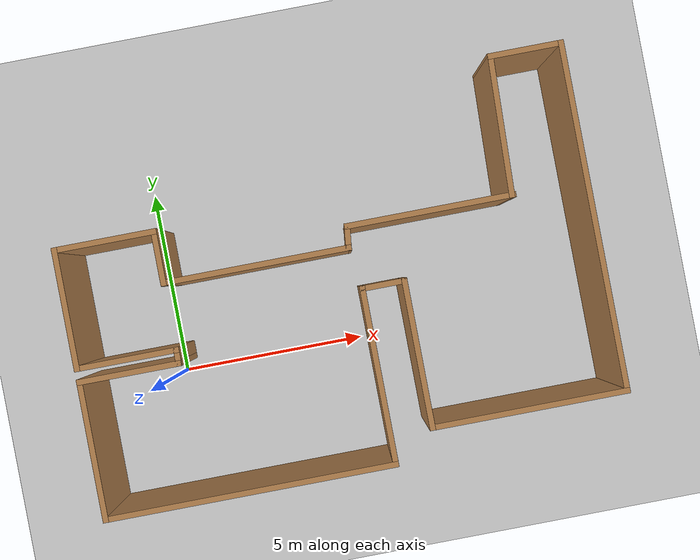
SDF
<sdf version="1.7">
 <world name="default">
  <light name="sun" type="directional">
   <pose>0 0 10 0 -0 0</pose>
   <diffuse>0.8 0.8 0.8 1</diffuse>
   <specular>0.2 0.2 0.2 1</specular>
   <attenuation>
    <range>1000</range>
    <constant>0.9</constant>
    <linear>0.01</linear>
    <quadratic>0.001</quadratic>
   </attenuation>
   <direction>-0.5 0.1 -0.9</direction>
   <spot><inner_angle>0</inner_angle><outer_angle>0</outer_angle><falloff>0</falloff></spot>
  </light>
  <model name="ground_plane">
   <static>1</static>
   <link name="link">
    <collision name="collision">
     <geometry><plane><normal>0 0 1</normal><size>100 100</size></plane></geometry>
     <surface>
      <contact><collide_bitmask>65535</collide_bitmask></contact>
      <friction><ode><mu>100</mu><mu2>50</mu2></ode></friction>
     </surface>
    </collision>
    <visual name="visual">
     <cast_shadows>0</cast_shadows>
     <geometry><plane><normal>0 0 1</normal><size>100 100</size></plane></geometry>
     <material>
      <script><uri>file://media/materials/scripts/gazebo.material</uri><name>Gazebo/Grey</name></script>
     </material>
    </visual>
   </link>
  </model>
  <gravity>0 0 -9.8</gravity>
  <magnetic_field>6e-06 2.3e-05 -4.2e-05</magnetic_field>
  <atmosphere type="adiabatic"/>
  <physics type="ode">
   <max_step_size>0.001</max_step_size>
   <real_time_factor>1</real_time_factor>
   <real_time_update_rate>1000</real_time_update_rate>
  </physics>
  <scene><ambient>0.4 0.4 0.4 1</ambient><background>0.7 0.7 0.7 1</background><shadows>1</shadows></scene>
  <spherical_coordinates>
   <surface_model>EARTH_WGS84</surface_model>
   <latitude_deg>0</latitude_deg>
   <longitude_deg>0</longitude_deg>
   <elevation>0</elevation>
   <heading_deg>0</heading_deg>
  </spherical_coordinates>
  <model name="myroom">
   <pose>4.54829 1.68906 0 0 -0 0</pose>
   <link name="Wall_10">
    <collision name="Wall_10_Collision">
     <geometry><box><size>3.25 0.15 2.5</size></box></geometry>
     <pose>0 0 1.25 0 -0 0</pose>
    </collision>
    <visual name="Wall_10_Visual">
     <pose>0 0 1.25 0 -0 0</pose>
     <geometry><box><size>3.25 0.15 2.5</size></box></geometry>
     <material>
      <script><uri>file://media/materials/scripts/gazebo.material</uri><name>Gazebo/Wood</name></script>
      <ambient>1 1 1 1</ambient>
     </material>
     <meta><layer>0</layer></meta>
    </visual>
    <pose>-6.9 0.573885 0 0 -0 -1.5708</pose>
   </link>
   <link name="Wall_11">
    <collision name="Wall_11_Collision">
     <geometry><box><size>2.75 0.15 2.5</size></box></geometry>
     <pose>0 0 1.25 0 -0 0</pose>
    </collision>
    <visual name="Wall_11_Visual">
     <pose>0 0 1.25 0 -0 0</pose>
     <geometry><box><size>2.75 0.15 2.5</size></box></geometry>
     <material>
      <script><uri>file://media/materials/scripts/gazebo.material</uri><name>Gazebo/Wood</name></script>
      <ambient>1 1 1 1</ambient>
     </material>
     <meta><layer>0</layer></meta>
    </visual>
    <pose>-5.6 -0.976115 0 0 -0 0</pose>
   </link>
   <link name="Wall_12">
    <collision name="Wall_12_Collision">
     <geometry><box><size>0.5 0.15 2.5</size></box></geometry>
     <pose>0 0 1.25 0 -0 0</pose>
    </collision>
    <visual name="Wall_12_Visual">
     <pose>0 0 1.25 0 -0 0</pose>
     <geometry><box><size>0.5 0.15 2.5</size></box></geometry>
     <material>
      <script><uri>file://media/materials/scripts/gazebo.material</uri><name>Gazebo/Wood</name></script>
      <ambient>1 1 1 1</ambient>
     </material>
     <meta><layer>0</layer></meta>
    </visual>
    <pose>-4.3 -1.15112 0 0 -0 -1.5708</pose>
   </link>
   <link name="Wall_14">
    <collision name="Wall_14_Collision">
     <geometry><box><size>2.75 0.15 2.5</size></box></geometry>
     <pose>0 0 1.25 0 -0 0</pose>
    </collision>
    <visual name="Wall_14_Visual">
     <pose>0 0 1.25 0 -0 0</pose>
     <geometry><box><size>2.75 0.15 2.5</size></box></geometry>
     <material>
      <script><uri>file://media/materials/scripts/gazebo.material</uri><name>Gazebo/Wood</name></script>
      <ambient>1 1 1 1</ambient>
     </material>
     <meta><layer>0</layer></meta>
    </visual>
    <pose>-5.6 -1.32611 0 0 -0 3.14159</pose>
   </link>
   <link name="Wall_15">
    <collision name="Wall_15_Collision">
     <geometry><box><size>3.75 0.15 2.5</size></box></geometry>
     <pose>0 0 1.25 0 -0 0</pose>
    </collision>
    <visual name="Wall_15_Visual">
     <pose>0 0 1.25 0 -0 0</pose>
     <geometry><box><size>3.75 0.15 2.5</size></box></geometry>
     <material>
      <script><uri>file://media/materials/scripts/gazebo.material</uri><name>Gazebo/Wood</name></script>
      <ambient>1 1 1 1</ambient>
     </material>
     <meta><layer>0</layer></meta>
    </visual>
    <pose>-6.9 -3.12611 0 0 -0 -1.5708</pose>
   </link>
   <link name="Wall_16">
    <collision name="Wall_16_Collision">
     <geometry><box><size>7.75 0.15 2.5</size></box></geometry>
     <pose>0 0 1.25 0 -0 0</pose>
    </collision>
    <visual name="Wall_16_Visual">
     <pose>0 0 1.25 0 -0 0</pose>
     <geometry><box><size>7.75 0.15 2.5</size></box></geometry>
     <material>
      <script><uri>file://media/materials/scripts/gazebo.material</uri><name>Gazebo/Wood</name></script>
      <ambient>1 1 1 1</ambient>
     </material>
     <meta><layer>0</layer></meta>
    </visual>
    <pose>-3.1 -4.92612 0 0 -0 0</pose>
   </link>
   <link name="Wall_17">
    <collision name="Wall_17_Collision">
     <geometry><box><size>4.75 0.15 2.5</size></box></geometry>
     <pose>0 0 1.25 0 -0 0</pose>
    </collision>
    <visual name="Wall_17_Visual">
     <pose>0 0 1.25 0 -0 0</pose>
     <geometry><box><size>4.75 0.15 2.5</size></box></geometry>
     <material>
      <script><uri>file://media/materials/scripts/gazebo.material</uri><name>Gazebo/Wood</name></script>
      <ambient>1 1 1 1</ambient>
     </material>
     <meta><layer>0</layer></meta>
    </visual>
    <pose>0.7 -2.62611 0 0 -0 1.5708</pose>
   </link>
   <link name="Wall_18">
    <collision name="Wall_18_Collision">
     <geometry><box><size>1.25 0.15 2.5</size></box></geometry>
     <pose>0 0 1.25 0 -0 0</pose>
    </collision>
    <visual name="Wall_18_Visual">
     <pose>0 0 1.25 0 -0 0</pose>
     <geometry><box><size>1.25 0.15 2.5</size></box></geometry>
     <material>
      <script><uri>file://media/materials/scripts/gazebo.material</uri><name>Gazebo/Wood</name></script>
      <ambient>1 1 1 1</ambient>
     </material>
     <meta><layer>0</layer></meta>
    </visual>
    <pose>1.25 -0.326115 0 0 -0 0</pose>
   </link>
   <link name="Wall_19">
    <collision name="Wall_19_Collision">
     <geometry><box><size>4 0.15 2.5</size></box></geometry>
     <pose>0 0 1.25 0 -0 0</pose>
    </collision>
    <visual name="Wall_19_Visual">
     <pose>0 0 1.25 0 -0 0</pose>
     <geometry><box><size>4 0.15 2.5</size></box></geometry>
     <material>
      <script><uri>file://media/materials/scripts/gazebo.material</uri><name>Gazebo/Wood</name></script>
      <ambient>1 1 1 1</ambient>
     </material>
     <meta><layer>0</layer></meta>
    </visual>
    <pose>1.8 -2.25111 0 0 -0 -1.5708</pose>
   </link>
   <link name="Wall_20">
    <collision name="Wall_20_Collision">
     <geometry><box><size>5.25 0.15 2.5</size></box></geometry>
     <pose>0 0 1.25 0 -0 0</pose>
    </collision>
    <visual name="Wall_20_Visual">
     <pose>0 0 1.25 0 -0 0</pose>
     <geometry><box><size>5.25 0.15 2.5</size></box></geometry>
     <material>
      <script><uri>file://media/materials/scripts/gazebo.material</uri><name>Gazebo/Wood</name></script>
      <ambient>1 1 1 1</ambient>
     </material>
     <meta><layer>0</layer></meta>
    </visual>
    <pose>4.35 -4.17612 0 0 -0 0</pose>
   </link>
   <link name="Wall_21">
    <collision name="Wall_21_Collision">
     <geometry><box><size>9.25 0.15 2.5</size></box></geometry>
     <pose>0 0 1.25 0 -0 0</pose>
    </collision>
    <visual name="Wall_21_Visual">
     <pose>0 0 1.25 0 -0 0</pose>
     <geometry><box><size>9.25 0.15 2.5</size></box></geometry>
     <material>
      <script><uri>file://media/materials/scripts/gazebo.material</uri><name>Gazebo/Wood</name></script>
      <ambient>1 1 1 1</ambient>
     </material>
     <meta><layer>0</layer></meta>
    </visual>
    <pose>6.9 0.373885 0 0 -0 1.5708</pose>
   </link>
   <link name="Wall_22">
    <collision name="Wall_22_Collision">
     <geometry><box><size>2 0.15 2.5</size></box></geometry>
     <pose>0 0 1.25 0 -0 0</pose>
    </collision>
    <visual name="Wall_22_Visual">
     <pose>0 0 1.25 0 -0 0</pose>
     <geometry><box><size>2 0.15 2.5</size></box></geometry>
     <material>
      <script><uri>file://media/materials/scripts/gazebo.material</uri><name>Gazebo/Wood</name></script>
      <ambient>1 1 1 1</ambient>
     </material>
     <meta><layer>0</layer></meta>
    </visual>
    <pose>5.975 4.92389 0 0 -0 3.14159</pose>
   </link>
   <link name="Wall_23">
    <collision name="Wall_23_Collision">
     <geometry><box><size>3.75153 0.15 2.5</size></box></geometry>
     <pose>0 0 1.25 0 -0 0</pose>
    </collision>
    <visual name="Wall_23_Visual">
     <pose>0 0 1.25 0 -0 0</pose>
     <geometry><box><size>3.75153 0.15 2.5</size></box></geometry>
     <material>
      <script><uri>file://media/materials/scripts/gazebo.material</uri><name>Gazebo/Wood</name></script>
      <ambient>1 1 1 1</ambient>
     </material>
     <meta><layer>0</layer></meta>
    </visual>
    <pose>4.98879 3.12389 0 0 -0 -1.60479</pose>
   </link>
   <link name="Wall_24">
    <collision name="Wall_24_Collision">
     <geometry><box><size>4.5 0.15 2.5</size></box></geometry>
     <pose>0 0 1.25 0 -0 0</pose>
    </collision>
    <visual name="Wall_24_Visual">
     <pose>0 0 1.25 0 -0 0</pose>
     <geometry><box><size>4.5 0.15 2.5</size></box></geometry>
     <material>
      <script><uri>file://media/materials/scripts/gazebo.material</uri><name>Gazebo/Wood</name></script>
      <ambient>1 1 1 1</ambient>
     </material>
     <meta><layer>0</layer></meta>
    </visual>
    <pose>2.78755 1.32388 0 0 -0 3.14159</pose>
   </link>
   <link name="Wall_26">
    <collision name="Wall_26_Collision">
     <geometry><box><size>0.703545 0.15 2.5</size></box></geometry>
     <pose>0 0 1.25 0 -0 0</pose>
    </collision>
    <visual name="Wall_26_Visual">
     <pose>0 0 1.25 0 -0 0</pose>
     <geometry><box><size>0.703545 0.15 2.5</size></box></geometry>
     <material>
      <script><uri>file://media/materials/scripts/gazebo.material</uri><name>Gazebo/Wood</name></script>
      <ambient>1 1 1 1</ambient>
     </material>
     <meta><layer>0</layer></meta>
    </visual>
    <pose>0.581275 1.04889 0 0 -0 -1.68404</pose>
   </link>
   <link name="Wall_6">
    <collision name="Wall_6_Collision">
     <geometry><box><size>2.75 0.15 2.5</size></box></geometry>
     <pose>0 0 1.25 0 -0 0</pose>
    </collision>
    <visual name="Wall_6_Visual">
     <pose>0 0 1.25 0 -0 0</pose>
     <geometry><box><size>2.75 0.15 2.5</size></box></geometry>
     <material>
      <script><uri>file://media/materials/scripts/gazebo.material</uri><name>Gazebo/Wood</name></script>
      <ambient>1 1 1 1</ambient>
     </material>
     <meta><layer>0</layer></meta>
    </visual>
    <pose>-5.6 2.12389 0 0 -0 0</pose>
   </link>
   <link name="Wall_7">
    <collision name="Wall_7_Collision">
     <geometry><box><size>1.5 0.15 2.5</size></box></geometry>
     <pose>0 0 1.25 0 -0 0</pose>
    </collision>
    <visual name="Wall_7_Visual">
     <pose>0 0 1.25 0 -0 0</pose>
     <geometry><box><size>1.5 0.15 2.5</size></box></geometry>
     <material>
      <script><uri>file://media/materials/scripts/gazebo.material</uri><name>Gazebo/Wood</name></script>
      <ambient>1 1 1 1</ambient>
     </material>
     <meta><layer>0</layer></meta>
    </visual>
    <pose>-4.3 1.44888 0 0 -0 -1.5708</pose>
   </link>
   <link name="Wall_8">
    <collision name="Wall_8_Collision">
     <geometry><box><size>5 0.15 2.5</size></box></geometry>
     <pose>0 0 1.25 0 -0 0</pose>
    </collision>
    <visual name="Wall_8_Visual">
     <pose>0 0 1.25 0 -0 0</pose>
     <geometry><box><size>5 0.15 2.5</size></box></geometry>
     <material>
      <script><uri>file://media/materials/scripts/gazebo.material</uri><name>Gazebo/Wood</name></script>
      <ambient>1 1 1 1</ambient>
     </material>
     <meta><layer>0</layer></meta>
    </visual>
    <pose>-1.875 0.773885 0 0 -0 0</pose>
   </link>
   <static>1</static>
  </model>
 </world>
</sdf>
